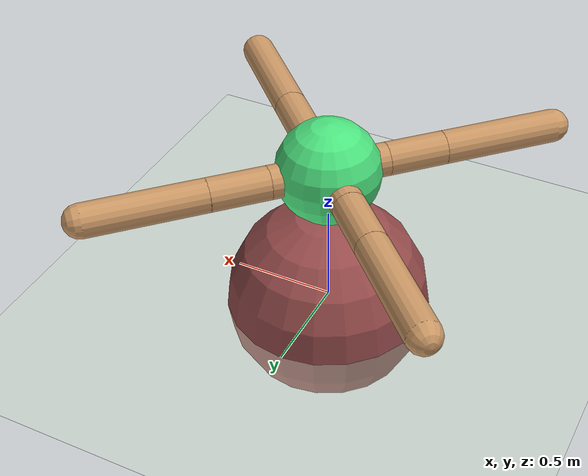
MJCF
<mujoco model="ant">
  <compiler inertiafromgeom="true" angle="degree" coordinate="local" />
  <option timestep="0.02" integrator="RK4" />
  <custom>
    <numeric name="init_qpos" data="0.0 0.0 0.55 1.0 0.0 0.0 0.0 0.0 1.0 0.0 -1.0 0.0 -1.0 0.0 1.0" />
  </custom>
  <default>
    <joint limited="true" armature="1" damping="1" />
    <geom condim="3" conaffinity="0" margin="0.01" friction="1 0.5 0.5" solref=".02 1" solimp=".8 .8 .01" rgba="0.8 0.6 0.4 1" density="5.0" />
  </default>
  <asset>
    <texture type="skybox" builtin="gradient" width="100" height="100" rgb1="1 1 1" rgb2="0 0 0" />
    <texture name="texgeom" type="cube" builtin="flat" mark="cross" width="127" height="1278" rgb1="0.8 0.6 0.4" rgb2="0.8 0.6 0.4" markrgb="1 1 1" random="0.01" />
    <texture name="texplane" type="2d" builtin="checker" rgb1="0.2 0.3 0.4" rgb2="0.1 0.2 0.3" width="100" height="100" />
    <material name='MatPlane' texture="texplane" shininess="1" texrepeat="60 60" specular="1"  reflectance="0.0" />
    <material name='geom' texture="texgeom" texuniform="true" />
    <material name='target' rgba=".6 .3 .3 1"/>
  </asset>
  <worldbody>
    <light directional="true" cutoff="100" exponent="1" diffuse="1 1 1" specular=".1 .1 .1" pos="0 0 1.3" dir="-0 0 -1.3" />
    <geom name='floor' pos='0 0 0' size='40 40 40' type='plane' conaffinity='1' rgba='0.8 0.9 0.8 1' condim='3' material='MatPlane' />
    <body name="torso" pos="0 0 0.75">
      <geom name="torso_geom" type="sphere" size="0.25" pos="0 0 0" rgba="0.3 0.9 0.5 1"/>
      <joint name="root" type="free" limited="false" pos="0 0 0" axis="0 0 1" margin="0.01" armature="0" damping="0" />
      <body name="front_left_leg" pos="0 0 0">
        <geom name="aux_1_geom" type="capsule" size="0.08" fromto="0.0 0.0 0.0 0.2 0.2 0.0" />
        <body name="aux_1" pos="0.2 0.2 0">
          <joint name="hip_1" type="hinge" pos="0.0 0.0 0.0" axis="0 0 1" range="-30 30" />
          <geom name="left_leg_geom" type="capsule" size="0.08" fromto="0.0 0.0 0.0 0.2 0.2 0.0" />
          <body pos="0.2 0.2 0">
            <joint name="ankle_1" type="hinge" pos="0.0 0.0 0.0" axis="-1 1 0" range="30 70" />
            <geom name="left_ankle_geom" type="capsule" size="0.08" fromto="0.0 0.0 0.0 0.4 0.4 0.0" />
          </body>
        </body>
      </body>
      <body name="front_right_leg" pos="0 0 0">
        <geom name="aux_2_geom" type="capsule" size="0.08" fromto="0.0 0.0 0.0 -0.2 0.2 0.0" />
        <body name="aux_2" pos="-0.2 0.2 0">
          <joint name="hip_2" type="hinge" pos="0.0 0.0 0.0" axis="0 0 1" range="-30 30" />
          <geom name="right_leg_geom" type="capsule" size="0.08" fromto="0.0 0.0 0.0 -0.2 0.2 0.0" />
          <body pos="-0.2 0.2 0">
            <joint name="ankle_2" type="hinge" pos="0.0 0.0 0.0" axis="1 1 0" range="-70 -30" />
            <geom name="right_ankle_geom" type="capsule" size="0.08" fromto="0.0 0.0 0.0 -0.4 0.4 0.0" />
          </body>
        </body>
      </body>
      <body name="back_leg" pos="0 0 0">
        <geom name="aux_3_geom" type="capsule" size="0.08" fromto="0.0 0.0 0.0 -0.2 -0.2 0.0" />
        <body name="aux_3" pos="-0.2 -0.2 0">
          <joint name="hip_3" type="hinge" pos="0.0 0.0 0.0" axis="0 0 1" range="-30 30" />
          <geom name="back_leg_geom" type="capsule" size="0.08" fromto="0.0 0.0 0.0 -0.2 -0.2 0.0" />
          <body pos="-0.2 -0.2 0">
            <joint name="ankle_3" type="hinge" pos="0.0 0.0 0.0" axis="-1 1 0" range="-70 -30" />
            <geom name="third_ankle_geom" type="capsule" size="0.08" fromto="0.0 0.0 0.0 -0.4 -0.4 0.0" />
          </body>
        </body>
      </body>
      <body name="right_back_leg" pos="0 0 0">
        <geom name="aux_4_geom" type="capsule" size="0.08" fromto="0.0 0.0 0.0 0.2 -0.2 0.0" />
        <body name="aux_4" pos="0.2 -0.2 0">
          <joint name="hip_4" type="hinge" pos="0.0 0.0 0.0" axis="0 0 1" range="-30 30" />
          <geom name="rightback_leg_geom" type="capsule" size="0.08" fromto="0.0 0.0 0.0 0.2 -0.2 0.0" />
          <body pos="0.2 -0.2 0">
            <joint name="ankle_4" type="hinge" pos="0.0 0.0 0.0" axis="1 1 0" range="30 70" />
            <geom name="fourth_ankle_geom" type="capsule" size="0.08" fromto="0.0 0.0 0.0 0.4 -0.4 0.0" />
          </body>
        </body>
      </body>
    </body>

    <site name="target1" pos="0 0 0" size="0.5" material='target'/>
    <site name="target2" pos="0 0 0" size="0.5" material='target'/>
    <site name="target3" pos="0 0 0" size="0.5" material='target'/>

  </worldbody>
  <actuator>
    <motor ctrllimited="true" ctrlrange="-1.0 1.0" joint="hip_4" gear="30"/>
    <motor ctrllimited="true" ctrlrange="-1.0 1.0" joint="ankle_4" gear="30"/>
    <motor ctrllimited="true" ctrlrange="-1.0 1.0" joint="hip_1" gear="30"/>
    <motor ctrllimited="true" ctrlrange="-1.0 1.0" joint="ankle_1" gear="30"/>
    <motor ctrllimited="true" ctrlrange="-1.0 1.0" joint="hip_2" gear="30"/>
    <motor ctrllimited="true" ctrlrange="-1.0 1.0" joint="ankle_2" gear="30"/>
    <motor ctrllimited="true" ctrlrange="-1.0 1.0" joint="hip_3" gear="30"/>
    <motor ctrllimited="true" ctrlrange="-1.0 1.0" joint="ankle_3" gear="30"/>
  </actuator>
</mujoco>
